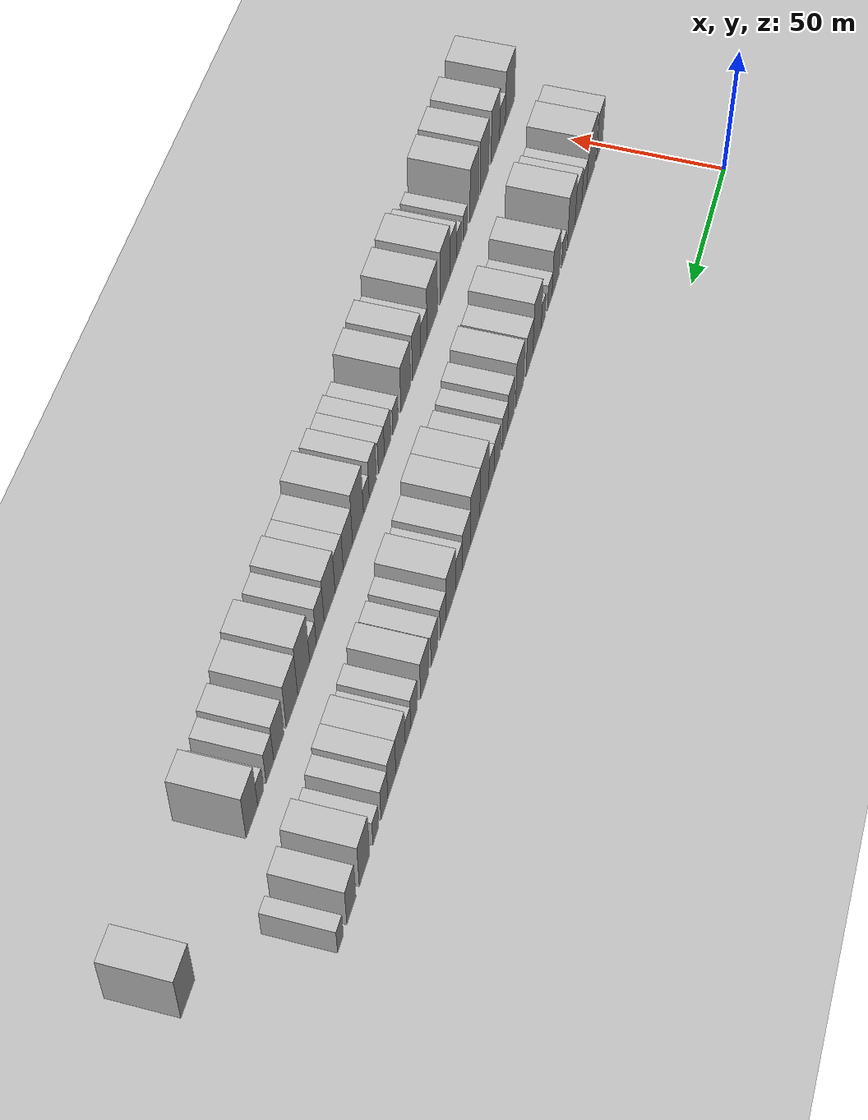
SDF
<sdf version="1.6">
 <world name="default">
  <include><name>ground_plane_1</name><uri>model://HANNAS_ground_plane</uri></include>
  <include>
   <name>ground_plane_2</name>
   <uri>model://HANNAS_ground_plane</uri>
   <pose>100 0 0  0 0 0</pose>
  </include>
  <model name="building_34">
   <static>1</static>
   <pose>50.0000 3.6249 0 0.000000 0.000000 0.000000</pose>
   <link name="link">
    <pose>0 0 10.50 0 0 0</pose>
    <collision name="collision"><geometry><box><size>20.0000 8.6273 21.0000</size></box></geometry></collision>
    <visual name="visual">
     <cast_shadows>0</cast_shadows>
     <geometry><box><size>20.0000 8.6273 21.0000</size></box></geometry>
     <material>
      <script>
       <uri>model://HANNAS_wall/materials/scripts</uri>
       <uri>model://HANNAS_wall/materials/textures</uri>
       <name>vrc/HANNAS_wall</name>
      </script>
     </material>
    </visual>
   </link>
  </model>
  <model name="building_35">
   <static>1</static>
   <pose>50.0000 15.7921 0 0.000000 0.000000 0.000000</pose>
   <link name="link">
    <pose>0 0 12.00 0 0 0</pose>
    <collision name="collision"><geometry><box><size>20.0000 11.7071 24.0000</size></box></geometry></collision>
    <visual name="visual">
     <cast_shadows>0</cast_shadows>
     <geometry><box><size>20.0000 11.7071 24.0000</size></box></geometry>
     <material>
      <script>
       <uri>model://HANNAS_wall/materials/scripts</uri>
       <uri>model://HANNAS_wall/materials/textures</uri>
       <name>vrc/HANNAS_wall</name>
      </script>
     </material>
    </visual>
   </link>
  </model>
  <model name="building_36">
   <static>1</static>
   <pose>50.0000 25.0424 0 0.000000 0.000000 0.000000</pose>
   <link name="link">
    <pose>0 0 7.50 0 0 0</pose>
    <collision name="collision"><geometry><box><size>20.0000 6.7934 15.0000</size></box></geometry></collision>
    <visual name="visual">
     <cast_shadows>0</cast_shadows>
     <geometry><box><size>20.0000 6.7934 15.0000</size></box></geometry>
     <material>
      <script>
       <uri>model://HANNAS_wall/materials/scripts</uri>
       <uri>model://HANNAS_wall/materials/textures</uri>
       <name>vrc/HANNAS_wall</name>
      </script>
     </material>
    </visual>
   </link>
  </model>
  <model name="building_37">
   <static>1</static>
   <pose>50.0000 32.8553 0 0.000000 0.000000 0.000000</pose>
   <link name="link">
    <pose>0 0 9.00 0 0 0</pose>
    <collision name="collision"><geometry><box><size>20.0000 8.8324 18.0000</size></box></geometry></collision>
    <visual name="visual">
     <cast_shadows>0</cast_shadows>
     <geometry><box><size>20.0000 8.8324 18.0000</size></box></geometry>
     <material>
      <script>
       <uri>model://HANNAS_wall/materials/scripts</uri>
       <uri>model://HANNAS_wall/materials/textures</uri>
       <name>vrc/HANNAS_wall</name>
      </script>
     </material>
    </visual>
   </link>
  </model>
  <model name="building_38">
   <static>1</static>
   <pose>50.0000 42.4731 0 0.000000 0.000000 0.000000</pose>
   <link name="link">
    <pose>0 0 12.00 0 0 0</pose>
    <collision name="collision"><geometry><box><size>20.0000 10.4032 24.0000</size></box></geometry></collision>
    <visual name="visual">
     <cast_shadows>0</cast_shadows>
     <geometry><box><size>20.0000 10.4032 24.0000</size></box></geometry>
     <material>
      <script>
       <uri>model://HANNAS_wall/materials/scripts</uri>
       <uri>model://HANNAS_wall/materials/textures</uri>
       <name>vrc/HANNAS_wall</name>
      </script>
     </material>
    </visual>
   </link>
  </model>
  <model name="building_39">
   <static>1</static>
   <pose>50.0000 52.2964 0 0.000000 0.000000 0.000000</pose>
   <link name="link">
    <pose>0 0 6.00 0 0 0</pose>
    <collision name="collision"><geometry><box><size>20.0000 5.2434 12.0000</size></box></geometry></collision>
    <visual name="visual">
     <cast_shadows>0</cast_shadows>
     <geometry><box><size>20.0000 5.2434 12.0000</size></box></geometry>
     <material>
      <script>
       <uri>model://HANNAS_wall/materials/scripts</uri>
       <uri>model://HANNAS_wall/materials/textures</uri>
       <name>vrc/HANNAS_wall</name>
      </script>
     </material>
    </visual>
   </link>
  </model>
  <model name="building_40">
   <static>1</static>
   <pose>50.0000 62.6098 0 0.000000 0.000000 0.000000</pose>
   <link name="link">
    <pose>0 0 10.50 0 0 0</pose>
    <collision name="collision"><geometry><box><size>20.0000 9.3833 21.0000</size></box></geometry></collision>
    <visual name="visual">
     <cast_shadows>0</cast_shadows>
     <geometry><box><size>20.0000 9.3833 21.0000</size></box></geometry>
     <material>
      <script>
       <uri>model://HANNAS_wall/materials/scripts</uri>
       <uri>model://HANNAS_wall/materials/textures</uri>
       <name>vrc/HANNAS_wall</name>
      </script>
     </material>
    </visual>
   </link>
  </model>
  <model name="building_41">
   <static>1</static>
   <pose>50.0000 70.1989 0 0.000000 0.000000 0.000000</pose>
   <link name="link">
    <pose>0 0 6.00 0 0 0</pose>
    <collision name="collision"><geometry><box><size>20.0000 5.7951 12.0000</size></box></geometry></collision>
    <visual name="visual">
     <cast_shadows>0</cast_shadows>
     <geometry><box><size>20.0000 5.7951 12.0000</size></box></geometry>
     <material>
      <script>
       <uri>model://HANNAS_wall/materials/scripts</uri>
       <uri>model://HANNAS_wall/materials/textures</uri>
       <name>vrc/HANNAS_wall</name>
      </script>
     </material>
    </visual>
   </link>
  </model>
  <model name="building_42">
   <static>1</static>
   <pose>50.0000 78.5643 0 0.000000 0.000000 0.000000</pose>
   <link name="link">
    <pose>0 0 6.00 0 0 0</pose>
    <collision name="collision"><geometry><box><size>20.0000 4.9357 12.0000</size></box></geometry></collision>
    <visual name="visual">
     <cast_shadows>0</cast_shadows>
     <geometry><box><size>20.0000 4.9357 12.0000</size></box></geometry>
     <material>
      <script>
       <uri>model://HANNAS_wall/materials/scripts</uri>
       <uri>model://HANNAS_wall/materials/textures</uri>
       <name>vrc/HANNAS_wall</name>
      </script>
     </material>
    </visual>
   </link>
  </model>
  <model name="building_43">
   <static>1</static>
   <pose>50.0000 86.1423 0 0.000000 0.000000 0.000000</pose>
   <link name="link">
    <pose>0 0 12.00 0 0 0</pose>
    <collision name="collision"><geometry><box><size>20.0000 10.2202 24.0000</size></box></geometry></collision>
    <visual name="visual">
     <cast_shadows>0</cast_shadows>
     <geometry><box><size>20.0000 10.2202 24.0000</size></box></geometry>
     <material>
      <script>
       <uri>model://HANNAS_wall/materials/scripts</uri>
       <uri>model://HANNAS_wall/materials/textures</uri>
       <name>vrc/HANNAS_wall</name>
      </script>
     </material>
    </visual>
   </link>
  </model>
  <model name="building_44">
   <static>1</static>
   <pose>50.0000 95.3899 0 0.000000 0.000000 0.000000</pose>
   <link name="link">
    <pose>0 0 9.00 0 0 0</pose>
    <collision name="collision"><geometry><box><size>20.0000 8.2749 18.0000</size></box></geometry></collision>
    <visual name="visual">
     <cast_shadows>0</cast_shadows>
     <geometry><box><size>20.0000 8.2749 18.0000</size></box></geometry>
     <material>
      <script>
       <uri>model://HANNAS_wall/materials/scripts</uri>
       <uri>model://HANNAS_wall/materials/textures</uri>
       <name>vrc/HANNAS_wall</name>
      </script>
     </material>
    </visual>
   </link>
  </model>
  <model name="building_45">
   <static>1</static>
   <pose>50.0000 107.2304 0 0.000000 0.000000 0.000000</pose>
   <link name="link">
    <pose>0 0 10.50 0 0 0</pose>
    <collision name="collision"><geometry><box><size>20.0000 9.4060 21.0000</size></box></geometry></collision>
    <visual name="visual">
     <cast_shadows>0</cast_shadows>
     <geometry><box><size>20.0000 9.4060 21.0000</size></box></geometry>
     <material>
      <script>
       <uri>model://HANNAS_wall/materials/scripts</uri>
       <uri>model://HANNAS_wall/materials/textures</uri>
       <name>vrc/HANNAS_wall</name>
      </script>
     </material>
    </visual>
   </link>
  </model>
  <model name="building_46">
   <static>1</static>
   <pose>50.0000 117.6209 0 0.000000 0.000000 0.000000</pose>
   <link name="link">
    <pose>0 0 9.00 0 0 0</pose>
    <collision name="collision"><geometry><box><size>20.0000 7.3749 18.0000</size></box></geometry></collision>
    <visual name="visual">
     <cast_shadows>0</cast_shadows>
     <geometry><box><size>20.0000 7.3749 18.0000</size></box></geometry>
     <material>
      <script>
       <uri>model://HANNAS_wall/materials/scripts</uri>
       <uri>model://HANNAS_wall/materials/textures</uri>
       <name>vrc/HANNAS_wall</name>
      </script>
     </material>
    </visual>
   </link>
  </model>
  <model name="building_47">
   <static>1</static>
   <pose>50.0000 124.5453 0 0.000000 0.000000 0.000000</pose>
   <link name="link">
    <pose>0 0 7.50 0 0 0</pose>
    <collision name="collision"><geometry><box><size>20.0000 6.4739 15.0000</size></box></geometry></collision>
    <visual name="visual">
     <cast_shadows>0</cast_shadows>
     <geometry><box><size>20.0000 6.4739 15.0000</size></box></geometry>
     <material>
      <script>
       <uri>model://HANNAS_wall/materials/scripts</uri>
       <uri>model://HANNAS_wall/materials/textures</uri>
       <name>vrc/HANNAS_wall</name>
      </script>
     </material>
    </visual>
   </link>
  </model>
  <model name="building_48">
   <static>1</static>
   <pose>50.0000 133.3689 0 0.000000 0.000000 0.000000</pose>
   <link name="link">
    <pose>0 0 7.50 0 0 0</pose>
    <collision name="collision"><geometry><box><size>20.0000 7.1733 15.0000</size></box></geometry></collision>
    <visual name="visual">
     <cast_shadows>0</cast_shadows>
     <geometry><box><size>20.0000 7.1733 15.0000</size></box></geometry>
     <material>
      <script>
       <uri>model://HANNAS_wall/materials/scripts</uri>
       <uri>model://HANNAS_wall/materials/textures</uri>
       <name>vrc/HANNAS_wall</name>
      </script>
     </material>
    </visual>
   </link>
  </model>
  <model name="building_49">
   <static>1</static>
   <pose>50.0000 139.9846 0 0.000000 0.000000 0.000000</pose>
   <link name="link">
    <pose>0 0 7.50 0 0 0</pose>
    <collision name="collision"><geometry><box><size>20.0000 6.0581 15.0000</size></box></geometry></collision>
    <visual name="visual">
     <cast_shadows>0</cast_shadows>
     <geometry><box><size>20.0000 6.0581 15.0000</size></box></geometry>
     <material>
      <script>
       <uri>model://HANNAS_wall/materials/scripts</uri>
       <uri>model://HANNAS_wall/materials/textures</uri>
       <name>vrc/HANNAS_wall</name>
      </script>
     </material>
    </visual>
   </link>
  </model>
  <model name="building_50">
   <static>1</static>
   <pose>50.0000 147.9668 0 0.000000 0.000000 0.000000</pose>
   <link name="link">
    <pose>0 0 12.00 0 0 0</pose>
    <collision name="collision"><geometry><box><size>20.0000 9.9063 24.0000</size></box></geometry></collision>
    <visual name="visual">
     <cast_shadows>0</cast_shadows>
     <geometry><box><size>20.0000 9.9063 24.0000</size></box></geometry>
     <material>
      <script>
       <uri>model://HANNAS_wall/materials/scripts</uri>
       <uri>model://HANNAS_wall/materials/textures</uri>
       <name>vrc/HANNAS_wall</name>
      </script>
     </material>
    </visual>
   </link>
  </model>
  <model name="building_51">
   <static>1</static>
   <pose>50.0000 158.0264 0 0.000000 0.000000 0.000000</pose>
   <link name="link">
    <pose>0 0 12.00 0 0 0</pose>
    <collision name="collision"><geometry><box><size>20.0000 10.2129 24.0000</size></box></geometry></collision>
    <visual name="visual">
     <cast_shadows>0</cast_shadows>
     <geometry><box><size>20.0000 10.2129 24.0000</size></box></geometry>
     <material>
      <script>
       <uri>model://HANNAS_wall/materials/scripts</uri>
       <uri>model://HANNAS_wall/materials/textures</uri>
       <name>vrc/HANNAS_wall</name>
      </script>
     </material>
    </visual>
   </link>
  </model>
  <model name="building_52">
   <static>1</static>
   <pose>50.0000 167.6139 0 0.000000 0.000000 0.000000</pose>
   <link name="link">
    <pose>0 0 9.00 0 0 0</pose>
    <collision name="collision"><geometry><box><size>20.0000 8.9620 18.0000</size></box></geometry></collision>
    <visual name="visual">
     <cast_shadows>0</cast_shadows>
     <geometry><box><size>20.0000 8.9620 18.0000</size></box></geometry>
     <material>
      <script>
       <uri>model://HANNAS_wall/materials/scripts</uri>
       <uri>model://HANNAS_wall/materials/textures</uri>
       <name>vrc/HANNAS_wall</name>
      </script>
     </material>
    </visual>
   </link>
  </model>
  <model name="building_53">
   <static>1</static>
   <pose>50.0000 175.3463 0 0.000000 0.000000 0.000000</pose>
   <link name="link">
    <pose>0 0 7.50 0 0 0</pose>
    <collision name="collision"><geometry><box><size>20.0000 6.5030 15.0000</size></box></geometry></collision>
    <visual name="visual">
     <cast_shadows>0</cast_shadows>
     <geometry><box><size>20.0000 6.5030 15.0000</size></box></geometry>
     <material>
      <script>
       <uri>model://HANNAS_wall/materials/scripts</uri>
       <uri>model://HANNAS_wall/materials/textures</uri>
       <name>vrc/HANNAS_wall</name>
      </script>
     </material>
    </visual>
   </link>
  </model>
  <model name="building_54">
   <static>1</static>
   <pose>50.0000 183.7897 0 0.000000 0.000000 0.000000</pose>
   <link name="link">
    <pose>0 0 10.50 0 0 0</pose>
    <collision name="collision"><geometry><box><size>20.0000 10.3837 21.0000</size></box></geometry></collision>
    <visual name="visual">
     <cast_shadows>0</cast_shadows>
     <geometry><box><size>20.0000 10.3837 21.0000</size></box></geometry>
     <material>
      <script>
       <uri>model://HANNAS_wall/materials/scripts</uri>
       <uri>model://HANNAS_wall/materials/textures</uri>
       <name>vrc/HANNAS_wall</name>
      </script>
     </material>
    </visual>
   </link>
  </model>
  <model name="building_55">
   <static>1</static>
   <pose>50.0000 192.1452 0 0.000000 0.000000 0.000000</pose>
   <link name="link">
    <pose>0 0 7.50 0 0 0</pose>
    <collision name="collision"><geometry><box><size>20.0000 6.3272 15.0000</size></box></geometry></collision>
    <visual name="visual">
     <cast_shadows>0</cast_shadows>
     <geometry><box><size>20.0000 6.3272 15.0000</size></box></geometry>
     <material>
      <script>
       <uri>model://HANNAS_wall/materials/scripts</uri>
       <uri>model://HANNAS_wall/materials/textures</uri>
       <name>vrc/HANNAS_wall</name>
      </script>
     </material>
    </visual>
   </link>
  </model>
  <model name="building_56">
   <static>1</static>
   <pose>50.0000 200.8737 0 0.000000 0.000000 0.000000</pose>
   <link name="link">
    <pose>0 0 7.50 0 0 0</pose>
    <collision name="collision"><geometry><box><size>20.0000 7.1298 15.0000</size></box></geometry></collision>
    <visual name="visual">
     <cast_shadows>0</cast_shadows>
     <geometry><box><size>20.0000 7.1298 15.0000</size></box></geometry>
     <material>
      <script>
       <uri>model://HANNAS_wall/materials/scripts</uri>
       <uri>model://HANNAS_wall/materials/textures</uri>
       <name>vrc/HANNAS_wall</name>
      </script>
     </material>
    </visual>
   </link>
  </model>
  <model name="building_57">
   <static>1</static>
   <pose>50.0000 210.6754 0 0.000000 0.000000 0.000000</pose>
   <link name="link">
    <pose>0 0 9.00 0 0 0</pose>
    <collision name="collision"><geometry><box><size>20.0000 8.4736 18.0000</size></box></geometry></collision>
    <visual name="visual">
     <cast_shadows>0</cast_shadows>
     <geometry><box><size>20.0000 8.4736 18.0000</size></box></geometry>
     <material>
      <script>
       <uri>model://HANNAS_wall/materials/scripts</uri>
       <uri>model://HANNAS_wall/materials/textures</uri>
       <name>vrc/HANNAS_wall</name>
      </script>
     </material>
    </visual>
   </link>
  </model>
  <model name="building_58">
   <static>1</static>
   <pose>50.0000 221.2127 0 0.000000 0.000000 0.000000</pose>
   <link name="link">
    <pose>0 0 7.50 0 0 0</pose>
    <collision name="collision"><geometry><box><size>20.0000 6.6009 15.0000</size></box></geometry></collision>
    <visual name="visual">
     <cast_shadows>0</cast_shadows>
     <geometry><box><size>20.0000 6.6009 15.0000</size></box></geometry>
     <material>
      <script>
       <uri>model://HANNAS_wall/materials/scripts</uri>
       <uri>model://HANNAS_wall/materials/textures</uri>
       <name>vrc/HANNAS_wall</name>
      </script>
     </material>
    </visual>
   </link>
  </model>
  <model name="building_59">
   <static>1</static>
   <pose>50.0000 227.0809 0 0.000000 0.000000 0.000000</pose>
   <link name="link">
    <pose>0 0 6.00 0 0 0</pose>
    <collision name="collision"><geometry><box><size>20.0000 5.1356 12.0000</size></box></geometry></collision>
    <visual name="visual">
     <cast_shadows>0</cast_shadows>
     <geometry><box><size>20.0000 5.1356 12.0000</size></box></geometry>
     <material>
      <script>
       <uri>model://HANNAS_wall/materials/scripts</uri>
       <uri>model://HANNAS_wall/materials/textures</uri>
       <name>vrc/HANNAS_wall</name>
      </script>
     </material>
    </visual>
   </link>
  </model>
  <model name="building_60">
   <static>1</static>
   <pose>50.0000 234.1412 0 0.000000 0.000000 0.000000</pose>
   <link name="link">
    <pose>0 0 9.00 0 0 0</pose>
    <collision name="collision"><geometry><box><size>20.0000 8.9851 18.0000</size></box></geometry></collision>
    <visual name="visual">
     <cast_shadows>0</cast_shadows>
     <geometry><box><size>20.0000 8.9851 18.0000</size></box></geometry>
     <material>
      <script>
       <uri>model://HANNAS_wall/materials/scripts</uri>
       <uri>model://HANNAS_wall/materials/textures</uri>
       <name>vrc/HANNAS_wall</name>
      </script>
     </material>
    </visual>
   </link>
  </model>
  <model name="building_61">
   <static>1</static>
   <pose>50.0000 242.4022 0 0.000000 0.000000 0.000000</pose>
   <link name="link">
    <pose>0 0 9.00 0 0 0</pose>
    <collision name="collision"><geometry><box><size>20.0000 7.5370 18.0000</size></box></geometry></collision>
    <visual name="visual">
     <cast_shadows>0</cast_shadows>
     <geometry><box><size>20.0000 7.5370 18.0000</size></box></geometry>
     <material>
      <script>
       <uri>model://HANNAS_wall/materials/scripts</uri>
       <uri>model://HANNAS_wall/materials/textures</uri>
       <name>vrc/HANNAS_wall</name>
      </script>
     </material>
    </visual>
   </link>
  </model>
  <model name="building_62">
   <static>1</static>
   <pose>50.0000 249.3360 0 0.000000 0.000000 0.000000</pose>
   <link name="link">
    <pose>0 0 7.50 0 0 0</pose>
    <collision name="collision"><geometry><box><size>20.0000 6.3305 15.0000</size></box></geometry></collision>
    <visual name="visual">
     <cast_shadows>0</cast_shadows>
     <geometry><box><size>20.0000 6.3305 15.0000</size></box></geometry>
     <material>
      <script>
       <uri>model://HANNAS_wall/materials/scripts</uri>
       <uri>model://HANNAS_wall/materials/textures</uri>
       <name>vrc/HANNAS_wall</name>
      </script>
     </material>
    </visual>
   </link>
  </model>
  <model name="building_63">
   <static>1</static>
   <pose>50.0000 257.2135 0 0.000000 0.000000 0.000000</pose>
   <link name="link">
    <pose>0 0 6.00 0 0 0</pose>
    <collision name="collision"><geometry><box><size>20.0000 5.4245 12.0000</size></box></geometry></collision>
    <visual name="visual">
     <cast_shadows>0</cast_shadows>
     <geometry><box><size>20.0000 5.4245 12.0000</size></box></geometry>
     <material>
      <script>
       <uri>model://HANNAS_wall/materials/scripts</uri>
       <uri>model://HANNAS_wall/materials/textures</uri>
       <name>vrc/HANNAS_wall</name>
      </script>
     </material>
    </visual>
   </link>
  </model>
  <model name="building_64">
   <static>1</static>
   <pose>50.0000 267.5240 0 0.000000 0.000000 0.000000</pose>
   <link name="link">
    <pose>0 0 10.50 0 0 0</pose>
    <collision name="collision"><geometry><box><size>20.0000 9.1967 21.0000</size></box></geometry></collision>
    <visual name="visual">
     <cast_shadows>0</cast_shadows>
     <geometry><box><size>20.0000 9.1967 21.0000</size></box></geometry>
     <material>
      <script>
       <uri>model://HANNAS_wall/materials/scripts</uri>
       <uri>model://HANNAS_wall/materials/textures</uri>
       <name>vrc/HANNAS_wall</name>
      </script>
     </material>
    </visual>
   </link>
  </model>
  <model name="building_65">
   <static>1</static>
   <pose>50.0000 279.0898 0 0.000000 0.000000 0.000000</pose>
   <link name="link">
    <pose>0 0 9.00 0 0 0</pose>
    <collision name="collision"><geometry><box><size>20.0000 7.9350 18.0000</size></box></geometry></collision>
    <visual name="visual">
     <cast_shadows>0</cast_shadows>
     <geometry><box><size>20.0000 7.9350 18.0000</size></box></geometry>
     <material>
      <script>
       <uri>model://HANNAS_wall/materials/scripts</uri>
       <uri>model://HANNAS_wall/materials/textures</uri>
       <name>vrc/HANNAS_wall</name>
      </script>
     </material>
    </visual>
   </link>
  </model>
  <model name="building_66">
   <static>1</static>
   <pose>50.0000 288.5487 0 0.000000 0.000000 0.000000</pose>
   <link name="link">
    <pose>0 0 6.00 0 0 0</pose>
    <collision name="collision"><geometry><box><size>20.0000 4.9828 12.0000</size></box></geometry></collision>
    <visual name="visual">
     <cast_shadows>0</cast_shadows>
     <geometry><box><size>20.0000 4.9828 12.0000</size></box></geometry>
     <material>
      <script>
       <uri>model://HANNAS_wall/materials/scripts</uri>
       <uri>model://HANNAS_wall/materials/textures</uri>
       <name>vrc/HANNAS_wall</name>
      </script>
     </material>
    </visual>
   </link>
  </model>
  <model name="building_99">
   <static>1</static>
   <pose>82.0000 -5.9207 0 0.000000 0.000000 0.000000</pose>
   <link name="link">
    <pose>0 0 12.00 0 0 0</pose>
    <collision name="collision"><geometry><box><size>20.0000 11.9850 24.0000</size></box></geometry></collision>
    <visual name="visual">
     <cast_shadows>0</cast_shadows>
     <geometry><box><size>20.0000 11.9850 24.0000</size></box></geometry>
     <material>
      <script>
       <uri>model://HANNAS_wall/materials/scripts</uri>
       <uri>model://HANNAS_wall/materials/textures</uri>
       <name>vrc/HANNAS_wall</name>
      </script>
     </material>
    </visual>
   </link>
  </model>
  <model name="building_100">
   <static>1</static>
   <pose>82.0000 3.8091 0 0.000000 0.000000 0.000000</pose>
   <link name="link">
    <pose>0 0 7.50 0 0 0</pose>
    <collision name="collision"><geometry><box><size>20.0000 7.4746 15.0000</size></box></geometry></collision>
    <visual name="visual">
     <cast_shadows>0</cast_shadows>
     <geometry><box><size>20.0000 7.4746 15.0000</size></box></geometry>
     <material>
      <script>
       <uri>model://HANNAS_wall/materials/scripts</uri>
       <uri>model://HANNAS_wall/materials/textures</uri>
       <name>vrc/HANNAS_wall</name>
      </script>
     </material>
    </visual>
   </link>
  </model>
  <model name="building_101">
   <static>1</static>
   <pose>82.0000 12.8915 0 0.000000 0.000000 0.000000</pose>
   <link name="link">
    <pose>0 0 12.00 0 0 0</pose>
    <collision name="collision"><geometry><box><size>20.0000 10.6901 24.0000</size></box></geometry></collision>
    <visual name="visual">
     <cast_shadows>0</cast_shadows>
     <geometry><box><size>20.0000 10.6901 24.0000</size></box></geometry>
     <material>
      <script>
       <uri>model://HANNAS_wall/materials/scripts</uri>
       <uri>model://HANNAS_wall/materials/textures</uri>
       <name>vrc/HANNAS_wall</name>
      </script>
     </material>
    </visual>
   </link>
  </model>
  <model name="building_102">
   <static>1</static>
   <pose>82.0000 26.5023 0 0.000000 0.000000 0.000000</pose>
   <link name="link">
    <pose>0 0 12.00 0 0 0</pose>
    <collision name="collision"><geometry><box><size>20.0000 10.5315 24.0000</size></box></geometry></collision>
    <visual name="visual">
     <cast_shadows>0</cast_shadows>
     <geometry><box><size>20.0000 10.5315 24.0000</size></box></geometry>
     <material>
      <script>
       <uri>model://HANNAS_wall/materials/scripts</uri>
       <uri>model://HANNAS_wall/materials/textures</uri>
       <name>vrc/HANNAS_wall</name>
      </script>
     </material>
    </visual>
   </link>
  </model>
  <model name="building_103">
   <static>1</static>
   <pose>82.0000 38.9937 0 0.000000 0.000000 0.000000</pose>
   <link name="link">
    <pose>0 0 12.00 0 0 0</pose>
    <collision name="collision"><geometry><box><size>20.0000 10.4512 24.0000</size></box></geometry></collision>
    <visual name="visual">
     <cast_shadows>0</cast_shadows>
     <geometry><box><size>20.0000 10.4512 24.0000</size></box></geometry>
     <material>
      <script>
       <uri>model://HANNAS_wall/materials/scripts</uri>
       <uri>model://HANNAS_wall/materials/textures</uri>
       <name>vrc/HANNAS_wall</name>
      </script>
     </material>
    </visual>
   </link>
  </model>
  <model name="building_104">
   <static>1</static>
   <pose>82.0000 49.8975 0 0.000000 0.000000 0.000000</pose>
   <link name="link">
    <pose>0 0 6.00 0 0 0</pose>
    <collision name="collision"><geometry><box><size>20.0000 5.3563 12.0000</size></box></geometry></collision>
    <visual name="visual">
     <cast_shadows>0</cast_shadows>
     <geometry><box><size>20.0000 5.3563 12.0000</size></box></geometry>
     <material>
      <script>
       <uri>model://HANNAS_wall/materials/scripts</uri>
       <uri>model://HANNAS_wall/materials/textures</uri>
       <name>vrc/HANNAS_wall</name>
      </script>
     </material>
    </visual>
   </link>
  </model>
  <model name="building_105">
   <static>1</static>
   <pose>82.0000 57.4781 0 0.000000 0.000000 0.000000</pose>
   <link name="link">
    <pose>0 0 6.00 0 0 0</pose>
    <collision name="collision"><geometry><box><size>20.0000 5.8051 12.0000</size></box></geometry></collision>
    <visual name="visual">
     <cast_shadows>0</cast_shadows>
     <geometry><box><size>20.0000 5.8051 12.0000</size></box></geometry>
     <material>
      <script>
       <uri>model://HANNAS_wall/materials/scripts</uri>
       <uri>model://HANNAS_wall/materials/textures</uri>
       <name>vrc/HANNAS_wall</name>
      </script>
     </material>
    </visual>
   </link>
  </model>
  <model name="building_106">
   <static>1</static>
   <pose>82.0000 64.1321 0 0.000000 0.000000 0.000000</pose>
   <link name="link">
    <pose>0 0 9.00 0 0 0</pose>
    <collision name="collision"><geometry><box><size>20.0000 7.5029 18.0000</size></box></geometry></collision>
    <visual name="visual">
     <cast_shadows>0</cast_shadows>
     <geometry><box><size>20.0000 7.5029 18.0000</size></box></geometry>
     <material>
      <script>
       <uri>model://HANNAS_wall/materials/scripts</uri>
       <uri>model://HANNAS_wall/materials/textures</uri>
       <name>vrc/HANNAS_wall</name>
      </script>
     </material>
    </visual>
   </link>
  </model>
  <model name="building_107">
   <static>1</static>
   <pose>82.0000 73.5195 0 0.000000 0.000000 0.000000</pose>
   <link name="link">
    <pose>0 0 12.00 0 0 0</pose>
    <collision name="collision"><geometry><box><size>20.0000 11.2721 24.0000</size></box></geometry></collision>
    <visual name="visual">
     <cast_shadows>0</cast_shadows>
     <geometry><box><size>20.0000 11.2721 24.0000</size></box></geometry>
     <material>
      <script>
       <uri>model://HANNAS_wall/materials/scripts</uri>
       <uri>model://HANNAS_wall/materials/textures</uri>
       <name>vrc/HANNAS_wall</name>
      </script>
     </material>
    </visual>
   </link>
  </model>
  <model name="building_108">
   <static>1</static>
   <pose>82.0000 87.9798 0 0.000000 0.000000 0.000000</pose>
   <link name="link">
    <pose>0 0 12.00 0 0 0</pose>
    <collision name="collision"><geometry><box><size>20.0000 11.6485 24.0000</size></box></geometry></collision>
    <visual name="visual">
     <cast_shadows>0</cast_shadows>
     <geometry><box><size>20.0000 11.6485 24.0000</size></box></geometry>
     <material>
      <script>
       <uri>model://HANNAS_wall/materials/scripts</uri>
       <uri>model://HANNAS_wall/materials/textures</uri>
       <name>vrc/HANNAS_wall</name>
      </script>
     </material>
    </visual>
   </link>
  </model>
  <model name="building_109">
   <static>1</static>
   <pose>82.0000 97.3159 0 0.000000 0.000000 0.000000</pose>
   <link name="link">
    <pose>0 0 7.50 0 0 0</pose>
    <collision name="collision"><geometry><box><size>20.0000 7.0238 15.0000</size></box></geometry></collision>
    <visual name="visual">
     <cast_shadows>0</cast_shadows>
     <geometry><box><size>20.0000 7.0238 15.0000</size></box></geometry>
     <material>
      <script>
       <uri>model://HANNAS_wall/materials/scripts</uri>
       <uri>model://HANNAS_wall/materials/textures</uri>
       <name>vrc/HANNAS_wall</name>
      </script>
     </material>
    </visual>
   </link>
  </model>
  <model name="building_110">
   <static>1</static>
   <pose>82.0000 105.3501 0 0.000000 0.000000 0.000000</pose>
   <link name="link">
    <pose>0 0 10.50 0 0 0</pose>
    <collision name="collision"><geometry><box><size>20.0000 9.0445 21.0000</size></box></geometry></collision>
    <visual name="visual">
     <cast_shadows>0</cast_shadows>
     <geometry><box><size>20.0000 9.0445 21.0000</size></box></geometry>
     <material>
      <script>
       <uri>model://HANNAS_wall/materials/scripts</uri>
       <uri>model://HANNAS_wall/materials/textures</uri>
       <name>vrc/HANNAS_wall</name>
      </script>
     </material>
    </visual>
   </link>
  </model>
  <model name="building_111">
   <static>1</static>
   <pose>82.0000 117.0437 0 0.000000 0.000000 0.000000</pose>
   <link name="link">
    <pose>0 0 10.50 0 0 0</pose>
    <collision name="collision"><geometry><box><size>20.0000 10.3427 21.0000</size></box></geometry></collision>
    <visual name="visual">
     <cast_shadows>0</cast_shadows>
     <geometry><box><size>20.0000 10.3427 21.0000</size></box></geometry>
     <material>
      <script>
       <uri>model://HANNAS_wall/materials/scripts</uri>
       <uri>model://HANNAS_wall/materials/textures</uri>
       <name>vrc/HANNAS_wall</name>
      </script>
     </material>
    </visual>
   </link>
  </model>
  <model name="building_112">
   <static>1</static>
   <pose>82.0000 128.0220 0 0.000000 0.000000 0.000000</pose>
   <link name="link">
    <pose>0 0 6.00 0 0 0</pose>
    <collision name="collision"><geometry><box><size>20.0000 5.6138 12.0000</size></box></geometry></collision>
    <visual name="visual">
     <cast_shadows>0</cast_shadows>
     <geometry><box><size>20.0000 5.6138 12.0000</size></box></geometry>
     <material>
      <script>
       <uri>model://HANNAS_wall/materials/scripts</uri>
       <uri>model://HANNAS_wall/materials/textures</uri>
       <name>vrc/HANNAS_wall</name>
      </script>
     </material>
    </visual>
   </link>
  </model>
  <model name="building_113">
   <static>1</static>
   <pose>82.0000 136.1099 0 0.000000 0.000000 0.000000</pose>
   <link name="link">
    <pose>0 0 7.50 0 0 0</pose>
    <collision name="collision"><geometry><box><size>20.0000 6.5619 15.0000</size></box></geometry></collision>
    <visual name="visual">
     <cast_shadows>0</cast_shadows>
     <geometry><box><size>20.0000 6.5619 15.0000</size></box></geometry>
     <material>
      <script>
       <uri>model://HANNAS_wall/materials/scripts</uri>
       <uri>model://HANNAS_wall/materials/textures</uri>
       <name>vrc/HANNAS_wall</name>
      </script>
     </material>
    </visual>
   </link>
  </model>
  <model name="building_114">
   <static>1</static>
   <pose>82.0000 142.5311 0 0.000000 0.000000 0.000000</pose>
   <link name="link">
    <pose>0 0 7.50 0 0 0</pose>
    <collision name="collision"><geometry><box><size>20.0000 6.2805 15.0000</size></box></geometry></collision>
    <visual name="visual">
     <cast_shadows>0</cast_shadows>
     <geometry><box><size>20.0000 6.2805 15.0000</size></box></geometry>
     <material>
      <script>
       <uri>model://HANNAS_wall/materials/scripts</uri>
       <uri>model://HANNAS_wall/materials/textures</uri>
       <name>vrc/HANNAS_wall</name>
      </script>
     </material>
    </visual>
   </link>
  </model>
  <model name="building_115">
   <static>1</static>
   <pose>82.0000 151.2828 0 0.000000 0.000000 0.000000</pose>
   <link name="link">
    <pose>0 0 9.00 0 0 0</pose>
    <collision name="collision"><geometry><box><size>20.0000 7.2230 18.0000</size></box></geometry></collision>
    <visual name="visual">
     <cast_shadows>0</cast_shadows>
     <geometry><box><size>20.0000 7.2230 18.0000</size></box></geometry>
     <material>
      <script>
       <uri>model://HANNAS_wall/materials/scripts</uri>
       <uri>model://HANNAS_wall/materials/textures</uri>
       <name>vrc/HANNAS_wall</name>
      </script>
     </material>
    </visual>
   </link>
  </model>
  <model name="building_116">
   <static>1</static>
   <pose>82.0000 157.7599 0 0.000000 0.000000 0.000000</pose>
   <link name="link">
    <pose>0 0 6.00 0 0 0</pose>
    <collision name="collision"><geometry><box><size>20.0000 5.7311 12.0000</size></box></geometry></collision>
    <visual name="visual">
     <cast_shadows>0</cast_shadows>
     <geometry><box><size>20.0000 5.7311 12.0000</size></box></geometry>
     <material>
      <script>
       <uri>model://HANNAS_wall/materials/scripts</uri>
       <uri>model://HANNAS_wall/materials/textures</uri>
       <name>vrc/HANNAS_wall</name>
      </script>
     </material>
    </visual>
   </link>
  </model>
  <model name="building_117">
   <static>1</static>
   <pose>82.0000 166.0019 0 0.000000 0.000000 0.000000</pose>
   <link name="link">
    <pose>0 0 12.00 0 0 0</pose>
    <collision name="collision"><geometry><box><size>20.0000 10.7529 24.0000</size></box></geometry></collision>
    <visual name="visual">
     <cast_shadows>0</cast_shadows>
     <geometry><box><size>20.0000 10.7529 24.0000</size></box></geometry>
     <material>
      <script>
       <uri>model://HANNAS_wall/materials/scripts</uri>
       <uri>model://HANNAS_wall/materials/textures</uri>
       <name>vrc/HANNAS_wall</name>
      </script>
     </material>
    </visual>
   </link>
  </model>
  <model name="building_118">
   <static>1</static>
   <pose>82.0000 175.8782 0 0.000000 0.000000 0.000000</pose>
   <link name="link">
    <pose>0 0 9.00 0 0 0</pose>
    <collision name="collision"><geometry><box><size>20.0000 8.9998 18.0000</size></box></geometry></collision>
    <visual name="visual">
     <cast_shadows>0</cast_shadows>
     <geometry><box><size>20.0000 8.9998 18.0000</size></box></geometry>
     <material>
      <script>
       <uri>model://HANNAS_wall/materials/scripts</uri>
       <uri>model://HANNAS_wall/materials/textures</uri>
       <name>vrc/HANNAS_wall</name>
      </script>
     </material>
    </visual>
   </link>
  </model>
  <model name="building_119">
   <static>1</static>
   <pose>82.0000 184.3049 0 0.000000 0.000000 0.000000</pose>
   <link name="link">
    <pose>0 0 9.00 0 0 0</pose>
    <collision name="collision"><geometry><box><size>20.0000 7.8536 18.0000</size></box></geometry></collision>
    <visual name="visual">
     <cast_shadows>0</cast_shadows>
     <geometry><box><size>20.0000 7.8536 18.0000</size></box></geometry>
     <material>
      <script>
       <uri>model://HANNAS_wall/materials/scripts</uri>
       <uri>model://HANNAS_wall/materials/textures</uri>
       <name>vrc/HANNAS_wall</name>
      </script>
     </material>
    </visual>
   </link>
  </model>
  <model name="building_120">
   <static>1</static>
   <pose>82.0000 193.3335 0 0.000000 0.000000 0.000000</pose>
   <link name="link">
    <pose>0 0 10.50 0 0 0</pose>
    <collision name="collision"><geometry><box><size>20.0000 10.2036 21.0000</size></box></geometry></collision>
    <visual name="visual">
     <cast_shadows>0</cast_shadows>
     <geometry><box><size>20.0000 10.2036 21.0000</size></box></geometry>
     <material>
      <script>
       <uri>model://HANNAS_wall/materials/scripts</uri>
       <uri>model://HANNAS_wall/materials/textures</uri>
       <name>vrc/HANNAS_wall</name>
      </script>
     </material>
    </visual>
   </link>
  </model>
  <model name="building_121">
   <static>1</static>
   <pose>82.0000 202.1005 0 0.000000 0.000000 0.000000</pose>
   <link name="link">
    <pose>0 0 9.00 0 0 0</pose>
    <collision name="collision"><geometry><box><size>20.0000 7.3303 18.0000</size></box></geometry></collision>
    <visual name="visual">
     <cast_shadows>0</cast_shadows>
     <geometry><box><size>20.0000 7.3303 18.0000</size></box></geometry>
     <material>
      <script>
       <uri>model://HANNAS_wall/materials/scripts</uri>
       <uri>model://HANNAS_wall/materials/textures</uri>
       <name>vrc/HANNAS_wall</name>
      </script>
     </material>
    </visual>
   </link>
  </model>
  <model name="building_122">
   <static>1</static>
   <pose>82.0000 208.7327 0 0.000000 0.000000 0.000000</pose>
   <link name="link">
    <pose>0 0 6.00 0 0 0</pose>
    <collision name="collision"><geometry><box><size>20.0000 5.9341 12.0000</size></box></geometry></collision>
    <visual name="visual">
     <cast_shadows>0</cast_shadows>
     <geometry><box><size>20.0000 5.9341 12.0000</size></box></geometry>
     <material>
      <script>
       <uri>model://HANNAS_wall/materials/scripts</uri>
       <uri>model://HANNAS_wall/materials/textures</uri>
       <name>vrc/HANNAS_wall</name>
      </script>
     </material>
    </visual>
   </link>
  </model>
  <model name="building_123">
   <static>1</static>
   <pose>82.0000 217.0974 0 0.000000 0.000000 0.000000</pose>
   <link name="link">
    <pose>0 0 12.00 0 0 0</pose>
    <collision name="collision"><geometry><box><size>20.0000 10.7953 24.0000</size></box></geometry></collision>
    <visual name="visual">
     <cast_shadows>0</cast_shadows>
     <geometry><box><size>20.0000 10.7953 24.0000</size></box></geometry>
     <material>
      <script>
       <uri>model://HANNAS_wall/materials/scripts</uri>
       <uri>model://HANNAS_wall/materials/textures</uri>
       <name>vrc/HANNAS_wall</name>
      </script>
     </material>
    </visual>
   </link>
  </model>
  <model name="building_124">
   <static>1</static>
   <pose>82.0000 227.6253 0 0.000000 0.000000 0.000000</pose>
   <link name="link">
    <pose>0 0 10.50 0 0 0</pose>
    <collision name="collision"><geometry><box><size>20.0000 10.2604 21.0000</size></box></geometry></collision>
    <visual name="visual">
     <cast_shadows>0</cast_shadows>
     <geometry><box><size>20.0000 10.2604 21.0000</size></box></geometry>
     <material>
      <script>
       <uri>model://HANNAS_wall/materials/scripts</uri>
       <uri>model://HANNAS_wall/materials/textures</uri>
       <name>vrc/HANNAS_wall</name>
      </script>
     </material>
    </visual>
   </link>
  </model>
  <model name="building_125">
   <static>1</static>
   <pose>82.0000 239.0850 0 0.000000 0.000000 0.000000</pose>
   <link name="link">
    <pose>0 0 9.00 0 0 0</pose>
    <collision name="collision"><geometry><box><size>20.0000 8.6589 18.0000</size></box></geometry></collision>
    <visual name="visual">
     <cast_shadows>0</cast_shadows>
     <geometry><box><size>20.0000 8.6589 18.0000</size></box></geometry>
     <material>
      <script>
       <uri>model://HANNAS_wall/materials/scripts</uri>
       <uri>model://HANNAS_wall/materials/textures</uri>
       <name>vrc/HANNAS_wall</name>
      </script>
     </material>
    </visual>
   </link>
  </model>
  <model name="building_126">
   <static>1</static>
   <pose>82.0000 246.7054 0 0.000000 0.000000 0.000000</pose>
   <link name="link">
    <pose>0 0 7.50 0 0 0</pose>
    <collision name="collision"><geometry><box><size>20.0000 6.5820 15.0000</size></box></geometry></collision>
    <visual name="visual">
     <cast_shadows>0</cast_shadows>
     <geometry><box><size>20.0000 6.5820 15.0000</size></box></geometry>
     <material>
      <script>
       <uri>model://HANNAS_wall/materials/scripts</uri>
       <uri>model://HANNAS_wall/materials/textures</uri>
       <name>vrc/HANNAS_wall</name>
      </script>
     </material>
    </visual>
   </link>
  </model>
  <model name="building_127">
   <static>1</static>
   <pose>82.0000 254.5157 0 0.000000 0.000000 0.000000</pose>
   <link name="link">
    <pose>0 0 6.00 0 0 0</pose>
    <collision name="collision"><geometry><box><size>20.0000 5.0386 12.0000</size></box></geometry></collision>
    <visual name="visual">
     <cast_shadows>0</cast_shadows>
     <geometry><box><size>20.0000 5.0386 12.0000</size></box></geometry>
     <material>
      <script>
       <uri>model://HANNAS_wall/materials/scripts</uri>
       <uri>model://HANNAS_wall/materials/textures</uri>
       <name>vrc/HANNAS_wall</name>
      </script>
     </material>
    </visual>
   </link>
  </model>
  <model name="building_128">
   <static>1</static>
   <pose>82.0000 261.8742 0 0.000000 0.000000 0.000000</pose>
   <link name="link">
    <pose>0 0 10.50 0 0 0</pose>
    <collision name="collision"><geometry><box><size>20.0000 9.6783 21.0000</size></box></geometry></collision>
    <visual name="visual">
     <cast_shadows>0</cast_shadows>
     <geometry><box><size>20.0000 9.6783 21.0000</size></box></geometry>
     <material>
      <script>
       <uri>model://HANNAS_wall/materials/scripts</uri>
       <uri>model://HANNAS_wall/materials/textures</uri>
       <name>vrc/HANNAS_wall</name>
      </script>
     </material>
    </visual>
   </link>
  </model>
  <model name="building_129">
   <static>1</static>
   <pose>82.0000 312.3830 0 0.000000 0.000000 0.000000</pose>
   <link name="link">
    <pose>0 0 10.50 0 0 0</pose>
    <collision name="collision"><geometry><box><size>20.0000 10.4465 21.0000</size></box></geometry></collision>
    <visual name="visual">
     <cast_shadows>0</cast_shadows>
     <geometry><box><size>20.0000 10.4465 21.0000</size></box></geometry>
     <material>
      <script>
       <uri>model://HANNAS_wall/materials/scripts</uri>
       <uri>model://HANNAS_wall/materials/textures</uri>
       <name>vrc/HANNAS_wall</name>
      </script>
     </material>
    </visual>
   </link>
  </model>
 </world>
</sdf>
